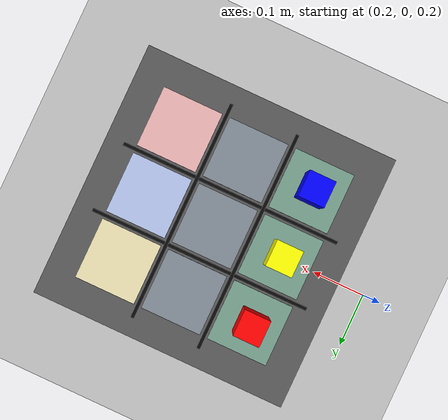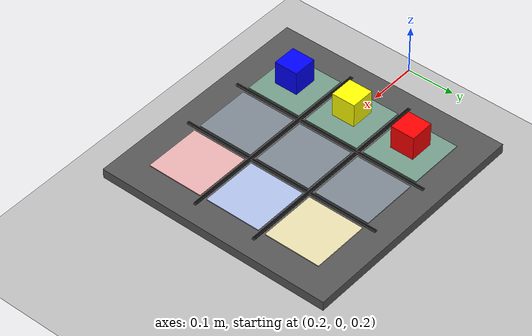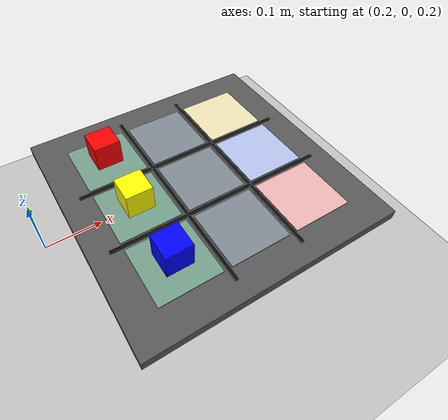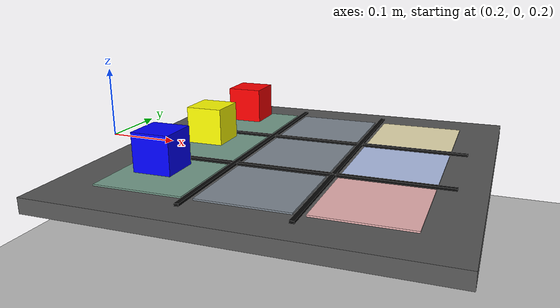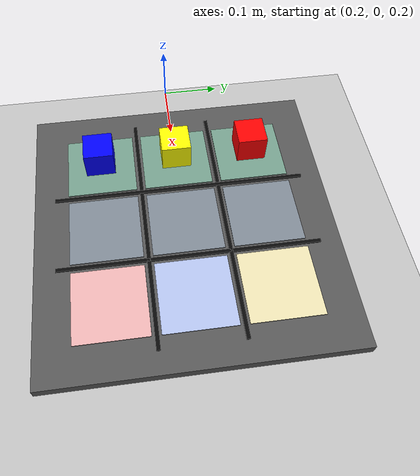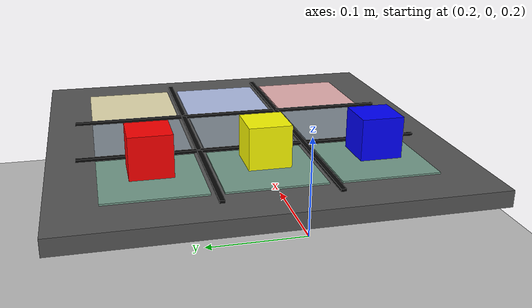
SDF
<sdf version="1.9">
  <world name="color_pick_world">
    <physics name="1ms" type="ignored">
      <max_step_size>0.001</max_step_size>
      <real_time_factor>1</real_time_factor>
      <real_time_update_rate>1000</real_time_update_rate>
    </physics>

    <plugin name="gz::sim::systems::Physics" filename="ignition-gazebo-physics-system"/>
    <plugin name="gz::sim::systems::UserCommands" filename="ignition-gazebo-user-commands-system"/>
    <plugin name="gz::sim::systems::SceneBroadcaster" filename="ignition-gazebo-scene-broadcaster-system"/>
    <plugin name="gz::sim::systems::Sensors" filename="ignition-gazebo-sensors-system">
      <render_engine>ogre2</render_engine>
    </plugin>
    <plugin name="gz::sim::systems::Contact" filename="ignition-gazebo-contact-system"/>

    <gravity>0 0 -9.8</gravity>

    <light type="directional" name="sun">
      <cast_shadows>true</cast_shadows>
      <pose>0 0 10 0 0 0</pose>
      <diffuse>0.8 0.8 0.8 1</diffuse>
      <specular>0.2 0.2 0.2 1</specular>
      <attenuation>
        <range>1000</range>
        <constant>0.9</constant>
        <linear>0.01</linear>
        <quadratic>0.001</quadratic>
      </attenuation>
      <direction>-0.5 0.1 -0.9</direction>
    </light>

    <model name="ground_plane">
      <static>true</static>
      <link name="link">
        <collision name="collision">
          <geometry>
            <plane>
              <normal>0 0 1</normal>
              <size>4 4</size>
            </plane>
          </geometry>
        </collision>
        <visual name="visual">
          <geometry>
            <plane>
              <normal>0 0 1</normal>
              <size>4 4</size>
            </plane>
          </geometry>
          <material>
            <ambient>0.75 0.75 0.75 1</ambient>
            <diffuse>0.75 0.75 0.75 1</diffuse>
          </material>
        </visual>
      </link>
    </model>

    <model name="pick_table">
      <static>true</static>
      <pose>0.50 0 0.19 0 0 0</pose>
      <link name="link">
        <collision name="collision">
          <geometry>
            <box>
              <size>0.5 0.5 0.02</size>
            </box>
          </geometry>
        </collision>
        <visual name="visual">
          <geometry>
            <box>
              <size>0.5 0.5 0.02</size>
            </box>
          </geometry>
          <material>
            <ambient>0.34 0.34 0.34 1</ambient>
            <diffuse>0.34 0.34 0.34 1</diffuse>
          </material>
        </visual>
        <!-- Demo 6 table overlay only changes visuals. Existing table collision,
             grid names, grid poses, planner logic, and controllers are unchanged. -->
        <visual name="slot_left_top_pickup">
          <pose>-0.133 0.133 0.0115 0 0 0</pose>
          <geometry>
            <box>
              <size>0.118 0.118 0.002</size>
            </box>
          </geometry>
          <material>
            <ambient>0.46 0.62 0.55 1</ambient>
            <diffuse>0.46 0.62 0.55 1</diffuse>
          </material>
        </visual>
        <visual name="slot_left_middle_pickup">
          <pose>-0.133 0.000 0.0115 0 0 0</pose>
          <geometry>
            <box>
              <size>0.118 0.118 0.002</size>
            </box>
          </geometry>
          <material>
            <ambient>0.46 0.62 0.55 1</ambient>
            <diffuse>0.46 0.62 0.55 1</diffuse>
          </material>
        </visual>
        <visual name="slot_left_bottom_pickup">
          <pose>-0.133 -0.133 0.0115 0 0 0</pose>
          <geometry>
            <box>
              <size>0.118 0.118 0.002</size>
            </box>
          </geometry>
          <material>
            <ambient>0.46 0.62 0.55 1</ambient>
            <diffuse>0.46 0.62 0.55 1</diffuse>
          </material>
        </visual>
        <visual name="slot_center_top_buffer">
          <pose>0.000 0.133 0.0115 0 0 0</pose>
          <geometry>
            <box>
              <size>0.118 0.118 0.002</size>
            </box>
          </geometry>
          <material>
            <ambient>0.50 0.54 0.58 1</ambient>
            <diffuse>0.50 0.54 0.58 1</diffuse>
          </material>
        </visual>
        <visual name="slot_center_middle_buffer">
          <pose>0.000 0.000 0.0115 0 0 0</pose>
          <geometry>
            <box>
              <size>0.118 0.118 0.002</size>
            </box>
          </geometry>
          <material>
            <ambient>0.50 0.54 0.58 1</ambient>
            <diffuse>0.50 0.54 0.58 1</diffuse>
          </material>
        </visual>
        <visual name="slot_center_bottom_buffer">
          <pose>0.000 -0.133 0.0115 0 0 0</pose>
          <geometry>
            <box>
              <size>0.118 0.118 0.002</size>
            </box>
          </geometry>
          <material>
            <ambient>0.50 0.54 0.58 1</ambient>
            <diffuse>0.50 0.54 0.58 1</diffuse>
          </material>
        </visual>
        <visual name="slot_right_top_sort_yellow">
          <pose>0.133 0.133 0.0115 0 0 0</pose>
          <geometry>
            <box>
              <size>0.118 0.118 0.002</size>
            </box>
          </geometry>
          <material>
            <ambient>0.92 0.88 0.70 1</ambient>
            <diffuse>0.92 0.88 0.70 1</diffuse>
          </material>
        </visual>
        <visual name="slot_right_middle_sort_blue">
          <pose>0.133 0.000 0.0115 0 0 0</pose>
          <geometry>
            <box>
              <size>0.118 0.118 0.002</size>
            </box>
          </geometry>
          <material>
            <ambient>0.70 0.76 0.92 1</ambient>
            <diffuse>0.70 0.76 0.92 1</diffuse>
          </material>
        </visual>
        <visual name="slot_right_bottom_sort_red">
          <pose>0.133 -0.133 0.0115 0 0 0</pose>
          <geometry>
            <box>
              <size>0.118 0.118 0.002</size>
            </box>
          </geometry>
          <material>
            <ambient>0.92 0.70 0.70 1</ambient>
            <diffuse>0.92 0.70 0.70 1</diffuse>
          </material>
        </visual>
        <visual name="grid_line_vertical_left_center">
          <pose>-0.0665 0 0.013 0 0 0</pose>
          <geometry>
            <box>
              <size>0.006 0.43 0.003</size>
            </box>
          </geometry>
          <material>
            <ambient>0.03 0.03 0.03 1</ambient>
            <diffuse>0.03 0.03 0.03 1</diffuse>
          </material>
        </visual>
        <visual name="grid_line_vertical_center_right">
          <pose>0.0665 0 0.013 0 0 0</pose>
          <geometry>
            <box>
              <size>0.006 0.43 0.003</size>
            </box>
          </geometry>
          <material>
            <ambient>0.03 0.03 0.03 1</ambient>
            <diffuse>0.03 0.03 0.03 1</diffuse>
          </material>
        </visual>
        <visual name="grid_line_horizontal_top_middle">
          <pose>0 0.0665 0.013 0 0 0</pose>
          <geometry>
            <box>
              <size>0.43 0.006 0.003</size>
            </box>
          </geometry>
          <material>
            <ambient>0.03 0.03 0.03 1</ambient>
            <diffuse>0.03 0.03 0.03 1</diffuse>
          </material>
        </visual>
        <visual name="grid_line_horizontal_middle_bottom">
          <pose>0 -0.0665 0.013 0 0 0</pose>
          <geometry>
            <box>
              <size>0.43 0.006 0.003</size>
            </box>
          </geometry>
          <material>
            <ambient>0.03 0.03 0.03 1</ambient>
            <diffuse>0.03 0.03 0.03 1</diffuse>
          </material>
        </visual>
      </link>
    </model>

    <model name="red_cube">
      <pose>0.367 0.133 0.235 0 0 0</pose>
      <link name="link">
        <inertial>
          <mass>0.05</mass>
        </inertial>
        <collision name="collision">
          <geometry>
            <box>
              <size>0.05 0.05 0.05</size>
            </box>
          </geometry>
        </collision>
        <visual name="visual">
          <geometry>
            <box>
              <size>0.05 0.05 0.05</size>
            </box>
          </geometry>
          <material>
            <ambient>1 0 0 1</ambient>
            <diffuse>1 0 0 1</diffuse>
          </material>
        </visual>
      </link>
    </model>

    <model name="yellow_cube">
      <pose>0.367 0.000 0.235 0 0 0</pose>
      <link name="link">
        <inertial>
          <mass>0.05</mass>
        </inertial>
        <collision name="collision">
          <geometry>
            <box>
              <size>0.05 0.05 0.05</size>
            </box>
          </geometry>
        </collision>
        <visual name="visual">
          <geometry>
            <box>
              <size>0.05 0.05 0.05</size>
            </box>
          </geometry>
          <material>
            <ambient>1 1 0 1</ambient>
            <diffuse>1 1 0 1</diffuse>
          </material>
        </visual>
      </link>
    </model>

    <model name="blue_cube">
      <pose>0.367 -0.133 0.235 0 0 0</pose>
      <link name="link">
        <inertial>
          <mass>0.05</mass>
        </inertial>
        <collision name="collision">
          <geometry>
            <box>
              <size>0.05 0.05 0.05</size>
            </box>
          </geometry>
        </collision>
        <visual name="visual">
          <geometry>
            <box>
              <size>0.05 0.05 0.05</size>
            </box>
          </geometry>
          <material>
            <ambient>0 0 1 1</ambient>
            <diffuse>0 0 1 1</diffuse>
          </material>
        </visual>
      </link>
    </model>

    <scene>
      <shadows>false</shadows>
    </scene>
  </world>
</sdf>
